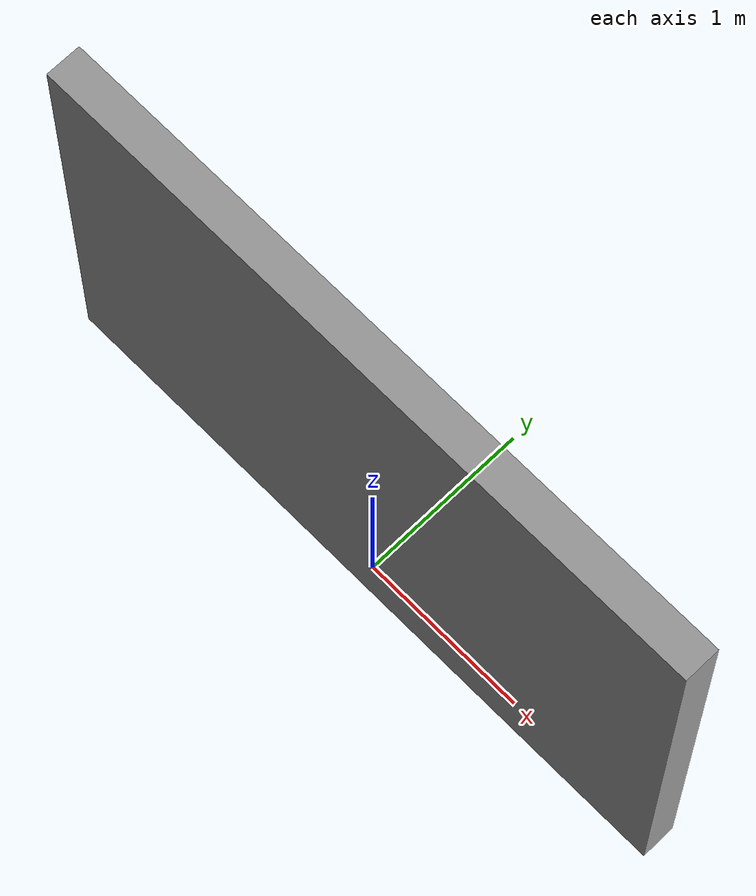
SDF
<?xml version="1.0" ?>
<sdf version="1.3">
  <model name="grey_wall">
    <static>true</static>
    <link name="link">
      <pose>0 0 1.4 0 0 0</pose>
      <collision name="collision">
        <geometry>
          <box>
            <size>4 0.2 2.8</size>
          </box>
        </geometry>
      </collision>
      <visual name="visual">
        <cast_shadows>false</cast_shadows>
        <geometry>
          <box>
            <size>4 0.2 2.8</size>
          </box>
        </geometry>
        <material>
          <script>
            <uri>model://w2/materials/scripts</uri>
            <uri>model://w2/materials/textures</uri>
            <name>vrc/grey_wall</name>
          </script>
        </material>
      </visual>
    </link>
  </model>
</sdf>
